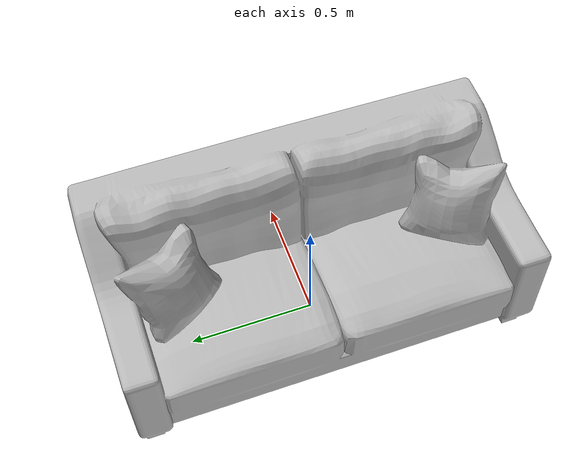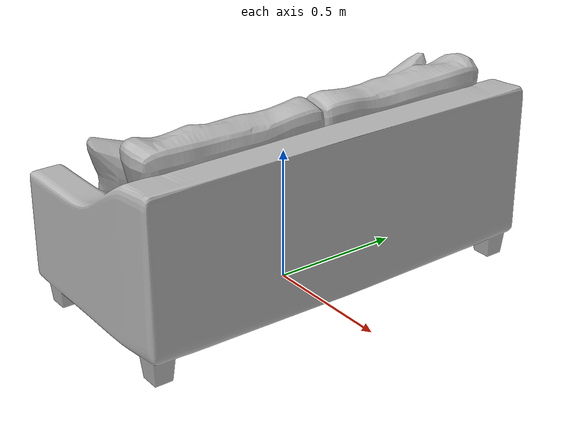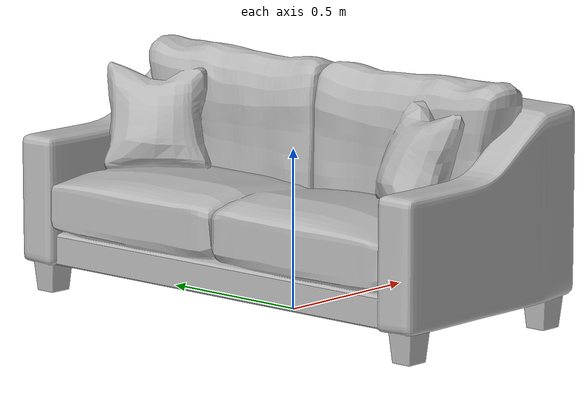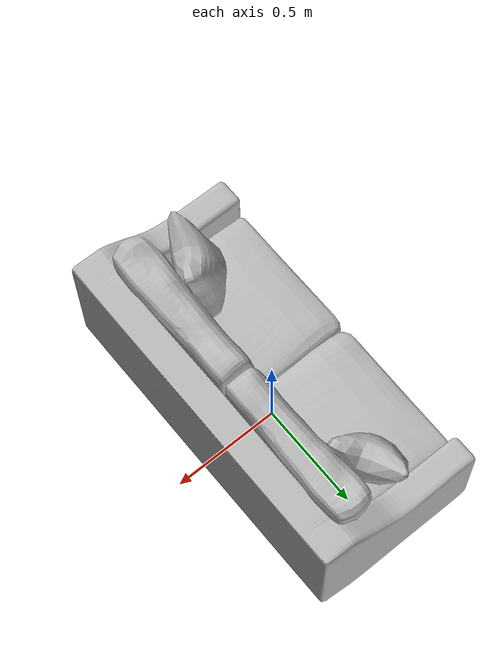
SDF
<?xml version="1.0" ?>
<sdf version="1.7">
  <model name="sofa">
    <static>true</static>

    <link name="link">
      <visual name="visual">
        <geometry>
          <mesh>
           <uri>model://sofa/sofa.dae</uri>
            <scale>0.02 0.02 0.02</scale>
           </mesh>
        </geometry>
      </visual>

      <collision name="collision">
        <geometry>
          <mesh>
            <uri>model://sofa/sofa.dae</uri>
          </mesh>
        </geometry>
      </collision>
    </link>
  </model>
</sdf>
